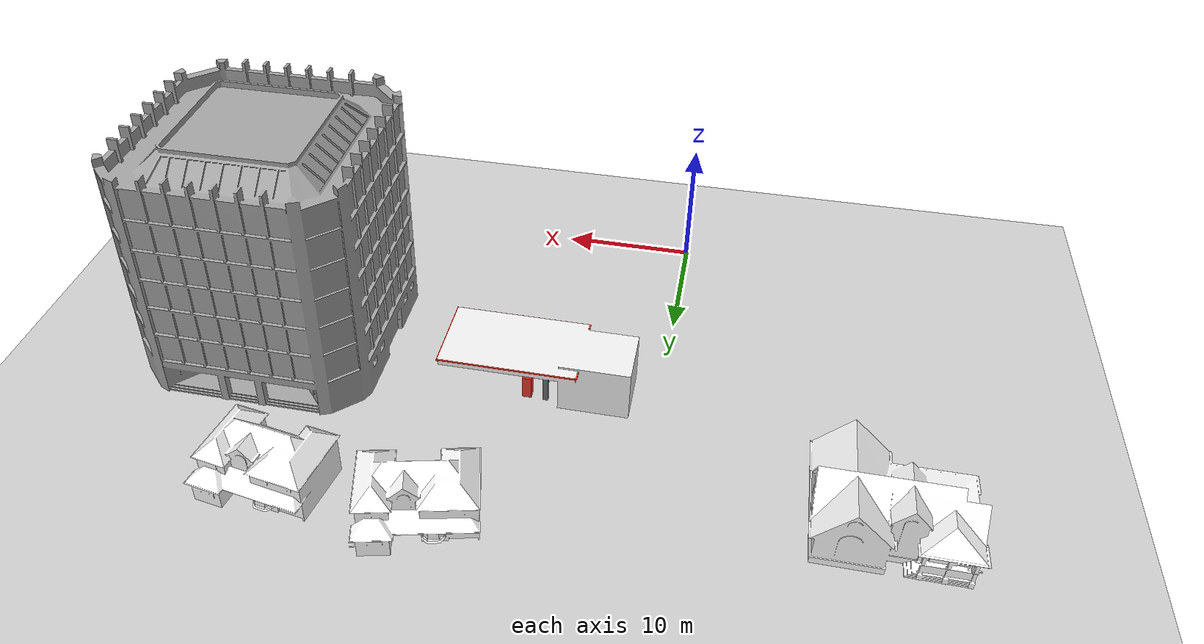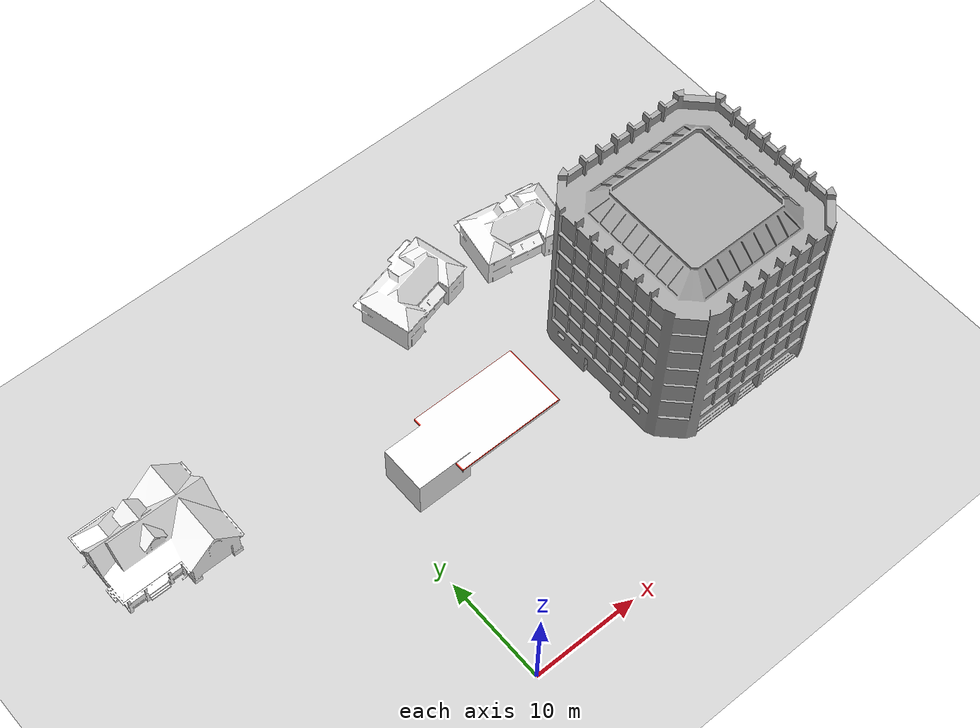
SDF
<sdf version="1.6">
 <world name="default">
  <light name="sun" type="directional">
   <pose>0 0 10 0 -0 0</pose>
   <diffuse>0.8 0.8 0.8 1</diffuse>
   <specular>0.1 0.1 0.1 1</specular>
   <attenuation>
    <range>1000</range>
    <constant>0.9</constant>
    <linear>0.01</linear>
    <quadratic>0.001</quadratic>
   </attenuation>
   <direction>-0.5 0.5 -1</direction>
  </light>
  <model name="ground_plane">
   <static>1</static>
   <link name="link">
    <collision name="collision">
     <geometry><plane><normal>0 0 1</normal><size>100 100</size></plane></geometry>
     <surface><friction><ode><mu>100</mu><mu2>50</mu2></ode></friction></surface>
    </collision>
    <visual name="visual">
     <cast_shadows>0</cast_shadows>
     <geometry><plane><normal>0 0 1</normal><size>100 100</size></plane></geometry>
     <material>
      <script><uri>file://media/materials/scripts/gazebo.material</uri><name>Gazebo/Grey</name></script>
     </material>
    </visual>
   </link>
  </model>
  <gravity>0 0 -9.8</gravity>
  <magnetic_field>6e-06 2.3e-05 -4.2e-05</magnetic_field>
  <atmosphere type="adiabatic"/>
  <physics name="default_physics" default="0" type="ode">
   <max_step_size>0.001</max_step_size>
   <real_time_factor>1</real_time_factor>
   <real_time_update_rate>1000</real_time_update_rate>
  </physics>
  <scene><ambient>0.4 0.4 0.4 1</ambient><background>0.7 0.7 0.7 1</background><shadows>1</shadows></scene>
  <spherical_coordinates>
   <surface_model>EARTH_WGS84</surface_model>
   <latitude_deg>0</latitude_deg>
   <longitude_deg>0</longitude_deg>
   <elevation>0</elevation>
   <heading_deg>0</heading_deg>
  </spherical_coordinates>
  <model name="Gas Station">
   <static>1</static>
   <link name="link">
    <collision name="collision">
     <geometry><mesh><uri>model://gas_station/meshes/gas_station.dae</uri><scale>1 1 1</scale></mesh></geometry>
    </collision>
    <visual name="visual">
     <geometry><mesh><uri>model://gas_station/meshes/gas_station.dae</uri><scale>1 1 1</scale></mesh></geometry>
     <material>
      <script>
       <uri>model://gas_station/materials/scripts</uri>
       <uri>model://gas_station/materials/textures</uri>
       <name>GasStation/Diffuse</name>
      </script>
      <shader type="normal_map_object_space"><normal_map>GasStation_Normal.png</normal_map></shader>
     </material>
    </visual>
   </link>
   <pose>8.47793 18.7554 0 0 -0 0</pose>
  </model>
  <model name="House 1_0">
   <static>1</static>
   <link name="link">
    <collision name="collision">
     <geometry><mesh><uri>model://house_1/meshes/house_1.dae</uri><scale>1 1 1</scale></mesh></geometry>
    </collision>
    <visual name="visual">
     <geometry><mesh><uri>model://house_1/meshes/house_1.dae</uri><scale>1 1 1</scale></mesh></geometry>
     <material>
      <script>
       <uri>model://house_1/materials/scripts</uri>
       <uri>model://house_1/materials/textures</uri>
       <name>House_1/Diffuse</name>
      </script>
      <shader type="normal_map_object_space"><normal_map>House_1_Normal.png</normal_map></shader>
     </material>
    </visual>
   </link>
   <pose>-15.6832 27.4555 0 0 -0 0</pose>
  </model>
  <model name="House 2">
   <static>1</static>
   <link name="link">
    <collision name="collision">
     <geometry><mesh><uri>model://house_2/meshes/house_2.dae</uri><scale>1 1 1</scale></mesh></geometry>
    </collision>
    <visual name="visual">
     <geometry><mesh><uri>model://house_2/meshes/house_2.dae</uri><scale>1 1 1</scale></mesh></geometry>
     <material>
      <script>
       <uri>model://house_2/materials/scripts</uri>
       <uri>model://house_2/materials/textures</uri>
       <name>House_2/Diffuse</name>
      </script>
     </material>
    </visual>
   </link>
   <pose>24.2383 31.8301 0 0 0 -0.171396</pose>
  </model>
  <model name="Office Building">
   <static>1</static>
   <link name="link">
    <collision name="collision">
     <geometry>
      <mesh><uri>model://office_building/meshes/office_building.dae</uri><scale>1 1 1</scale></mesh>
     </geometry>
    </collision>
    <visual name="visual">
     <geometry>
      <mesh><uri>model://office_building/meshes/office_building.dae</uri><scale>1 1 1</scale></mesh>
     </geometry>
    </visual>
   </link>
   <pose>29.7763 16.4031 0 0 -0 0</pose>
  </model>
  <model name="House 2_clone">
   <static>1</static>
   <link name="link">
    <collision name="collision">
     <geometry><mesh><uri>model://house_2/meshes/house_2.dae</uri><scale>1 1 1</scale></mesh></geometry>
    </collision>
    <visual name="visual">
     <geometry><mesh><uri>model://house_2/meshes/house_2.dae</uri><scale>1 1 1</scale></mesh></geometry>
     <material>
      <script>
       <uri>model://house_2/materials/scripts</uri>
       <uri>model://house_2/materials/textures</uri>
       <name>House_2/Diffuse</name>
      </script>
     </material>
    </visual>
   </link>
   <pose>13.6163 32.2892 0 0 -0 0.242859</pose>
  </model>
 </world>
</sdf>
